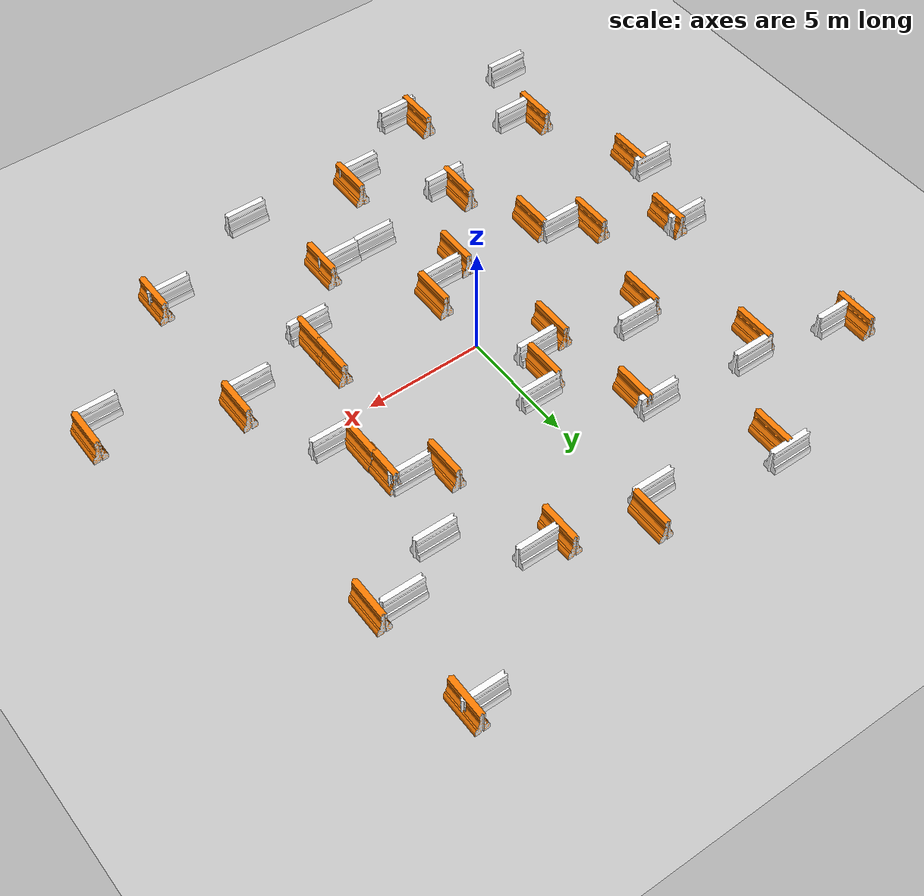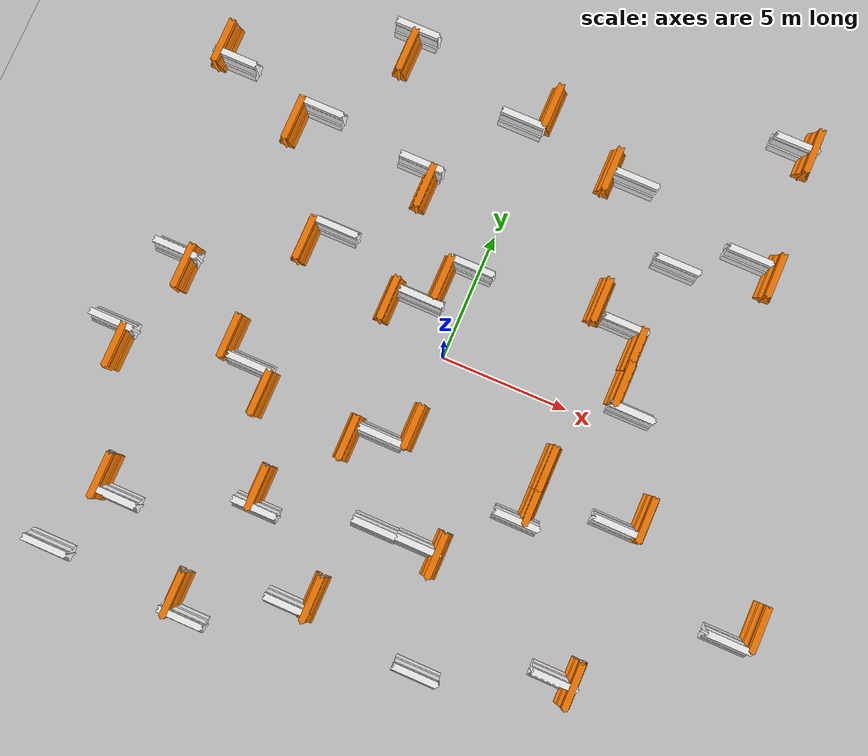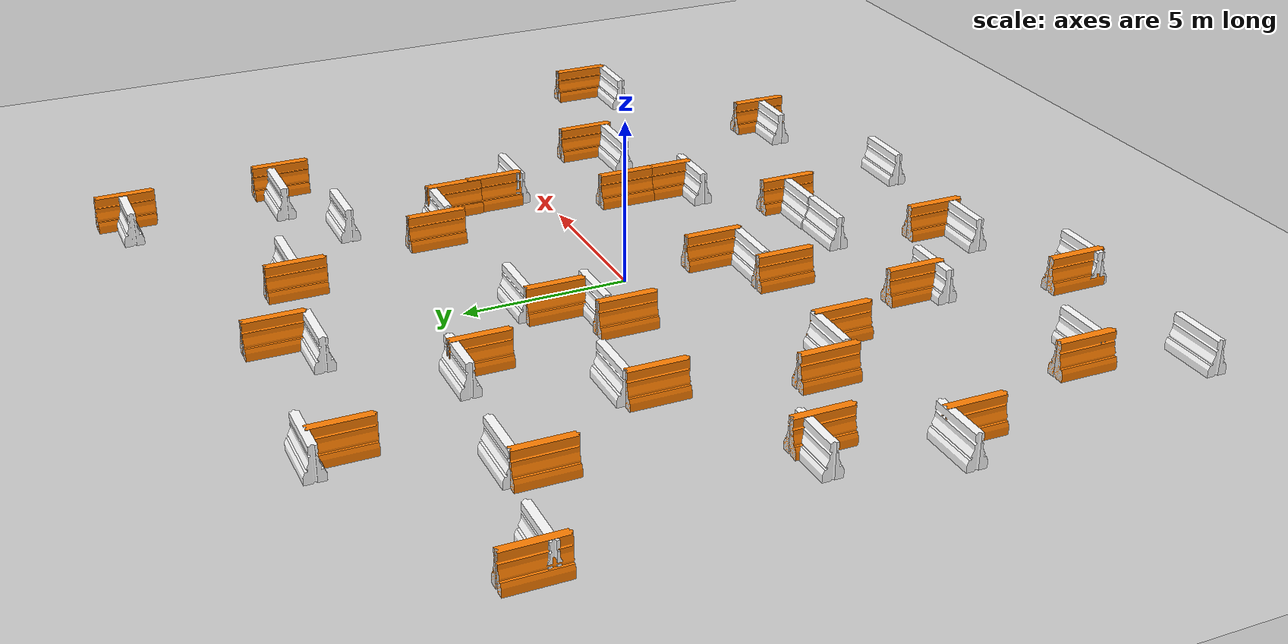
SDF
<sdf version="1.7">
 <world name="default">
  <light name="sun" type="directional">
   <pose>0 0 10 0 -0 0</pose>
   <diffuse>0.8 0.8 0.8 1</diffuse>
   <specular>0.2 0.2 0.2 1</specular>
   <attenuation>
    <range>1000</range>
    <constant>0.9</constant>
    <linear>0.01</linear>
    <quadratic>0.001</quadratic>
   </attenuation>
   <direction>-0.5 0.1 -0.9</direction>
   <spot><inner_angle>0</inner_angle><outer_angle>0</outer_angle><falloff>0</falloff></spot>
  </light>
  <model name="ground_plane">
   <static>1</static>
   <link name="link">
    <collision name="collision">
     <geometry><plane><normal>0 0 1</normal><size>100 100</size></plane></geometry>
     <surface>
      <contact><collide_bitmask>65535</collide_bitmask></contact>
      <friction><ode><mu>100</mu><mu2>50</mu2></ode></friction>
     </surface>
    </collision>
    <visual name="visual">
     <cast_shadows>0</cast_shadows>
     <geometry><plane><normal>0 0 1</normal><size>100 100</size></plane></geometry>
     <material>
      <script><uri>file://media/materials/scripts/gazebo.material</uri><name>Gazebo/Grey</name></script>
     </material>
    </visual>
   </link>
  </model>
  <gravity>0 0 -9.8</gravity>
  <magnetic_field>6e-06 2.3e-05 -4.2e-05</magnetic_field>
  <atmosphere type="adiabatic"/>
  <physics type="ode">
   <max_step_size>0.001</max_step_size>
   <real_time_factor>1</real_time_factor>
   <real_time_update_rate>1000</real_time_update_rate>
  </physics>
  <scene><ambient>0.4 0.4 0.4 1</ambient><background>0.7 0.7 0.7 1</background><shadows>1</shadows></scene>
  <spherical_coordinates>
   <surface_model>EARTH_WGS84</surface_model>
   <latitude_deg>0</latitude_deg>
   <longitude_deg>0</longitude_deg>
   <elevation>0</elevation>
   <heading_deg>0</heading_deg>
  </spherical_coordinates>
  <model name="drc_practice_orange_jersey_barrier_clone_0">
   <pose>-10.1874 -0.696687 0.001834 0 -0 0</pose>
   <frame name="drc_practice_organge_jersey_barrier::__model__" attached_to="drc_practice_organge_jersey_barrier::link">
    <pose relative_to="__model__">0 0 0 0 -0 0</pose>
   </frame>
   <static>1</static>
   <link name="drc_practice_organge_jersey_barrier::link">
    <visual name="visual">
     <geometry>
      <mesh><uri>model://drc_practice_orange_jersey_barrier/meshes/jersey_barrier.dae</uri></mesh>
     </geometry>
    </visual>
    <collision name="collision">
     <geometry>
      <mesh><uri>model://drc_practice_orange_jersey_barrier/meshes/jersey_barrier.dae</uri></mesh>
     </geometry>
    </collision>
    <pose relative_to="drc_practice_organge_jersey_barrier::__model__">0 0 0 0 -0 0</pose>
   </link>
  </model>
  <model name="drc_practice_orange_jersey_barrier_clone_1">
   <pose>-3.11986 5.63659 -0.000723 0 -0 0</pose>
   <frame name="drc_practice_organge_jersey_barrier::__model__" attached_to="drc_practice_organge_jersey_barrier::link">
    <pose relative_to="__model__">0 0 0 0 -0 0</pose>
   </frame>
   <static>1</static>
   <link name="drc_practice_organge_jersey_barrier::link">
    <visual name="visual">
     <geometry>
      <mesh><uri>model://drc_practice_orange_jersey_barrier/meshes/jersey_barrier.dae</uri></mesh>
     </geometry>
    </visual>
    <collision name="collision">
     <geometry>
      <mesh><uri>model://drc_practice_orange_jersey_barrier/meshes/jersey_barrier.dae</uri></mesh>
     </geometry>
    </collision>
    <pose relative_to="drc_practice_organge_jersey_barrier::__model__">0 0 0 0 -0 0</pose>
   </link>
  </model>
  <model name="drc_practice_orange_jersey_barrier_clone_2">
   <pose>-5.81841 10.2271 -0.003519 0 -0 0</pose>
   <frame name="drc_practice_organge_jersey_barrier::__model__" attached_to="drc_practice_organge_jersey_barrier::link">
    <pose relative_to="__model__">0 0 0 0 -0 0</pose>
   </frame>
   <static>1</static>
   <link name="drc_practice_organge_jersey_barrier::link">
    <visual name="visual">
     <geometry>
      <mesh><uri>model://drc_practice_orange_jersey_barrier/meshes/jersey_barrier.dae</uri></mesh>
     </geometry>
    </visual>
    <collision name="collision">
     <geometry>
      <mesh><uri>model://drc_practice_orange_jersey_barrier/meshes/jersey_barrier.dae</uri></mesh>
     </geometry>
    </collision>
    <pose relative_to="drc_practice_organge_jersey_barrier::__model__">0 0 0 0 -0 0</pose>
   </link>
  </model>
  <model name="drc_practice_orange_jersey_barrier_clone_3">
   <pose>6.46614 2.98525 0.002097 0 -0 0</pose>
   <frame name="drc_practice_organge_jersey_barrier::__model__" attached_to="drc_practice_organge_jersey_barrier::link">
    <pose relative_to="__model__">0 0 0 0 -0 0</pose>
   </frame>
   <static>1</static>
   <link name="drc_practice_organge_jersey_barrier::link">
    <visual name="visual">
     <geometry>
      <mesh><uri>model://drc_practice_orange_jersey_barrier/meshes/jersey_barrier.dae</uri></mesh>
     </geometry>
    </visual>
    <collision name="collision">
     <geometry>
      <mesh><uri>model://drc_practice_orange_jersey_barrier/meshes/jersey_barrier.dae</uri></mesh>
     </geometry>
    </collision>
    <pose relative_to="drc_practice_organge_jersey_barrier::__model__">0 0 0 0 -0 0</pose>
   </link>
  </model>
  <model name="drc_practice_orange_jersey_barrier_clone_4">
   <pose>6.49942 1.63685 0.004507 0 -0 0</pose>
   <frame name="drc_practice_organge_jersey_barrier::__model__" attached_to="drc_practice_organge_jersey_barrier::link">
    <pose relative_to="__model__">0 0 0 0 -0 0</pose>
   </frame>
   <static>1</static>
   <link name="drc_practice_organge_jersey_barrier::link">
    <visual name="visual">
     <geometry>
      <mesh><uri>model://drc_practice_orange_jersey_barrier/meshes/jersey_barrier.dae</uri></mesh>
     </geometry>
    </visual>
    <collision name="collision">
     <geometry>
      <mesh><uri>model://drc_practice_orange_jersey_barrier/meshes/jersey_barrier.dae</uri></mesh>
     </geometry>
    </collision>
    <pose relative_to="drc_practice_organge_jersey_barrier::__model__">0 0 0 0 -0 0</pose>
   </link>
  </model>
  <model name="drc_practice_orange_jersey_barrier_clone_5">
   <pose>-2.69496 1.18275 -0.003501 0 -0 0</pose>
   <frame name="drc_practice_organge_jersey_barrier::__model__" attached_to="drc_practice_organge_jersey_barrier::link">
    <pose relative_to="__model__">0 0 0 0 -0 0</pose>
   </frame>
   <static>1</static>
   <link name="drc_practice_organge_jersey_barrier::link">
    <visual name="visual">
     <geometry>
      <mesh><uri>model://drc_practice_orange_jersey_barrier/meshes/jersey_barrier.dae</uri></mesh>
     </geometry>
    </visual>
    <collision name="collision">
     <geometry>
      <mesh><uri>model://drc_practice_orange_jersey_barrier/meshes/jersey_barrier.dae</uri></mesh>
     </geometry>
    </collision>
    <pose relative_to="drc_practice_organge_jersey_barrier::__model__">0 0 0 0 -0 0</pose>
   </link>
  </model>
  <model name="drc_practice_orange_jersey_barrier_clone_6">
   <pose>-5.54481 -11.7487 -0.001958 0 -0 0</pose>
   <frame name="drc_practice_organge_jersey_barrier::__model__" attached_to="drc_practice_organge_jersey_barrier::link">
    <pose relative_to="__model__">0 0 0 0 -0 0</pose>
   </frame>
   <static>1</static>
   <link name="drc_practice_organge_jersey_barrier::link">
    <visual name="visual">
     <geometry>
      <mesh><uri>model://drc_practice_orange_jersey_barrier/meshes/jersey_barrier.dae</uri></mesh>
     </geometry>
    </visual>
    <collision name="collision">
     <geometry>
      <mesh><uri>model://drc_practice_orange_jersey_barrier/meshes/jersey_barrier.dae</uri></mesh>
     </geometry>
    </collision>
    <pose relative_to="drc_practice_organge_jersey_barrier::__model__">0 0 0 0 -0 0</pose>
   </link>
  </model>
  <model name="drc_practice_orange_jersey_barrier_clone_7">
   <pose>-1.14462 2.68768 -0.002019 0 -0 0</pose>
   <frame name="drc_practice_organge_jersey_barrier::__model__" attached_to="drc_practice_organge_jersey_barrier::link">
    <pose relative_to="__model__">0 0 0 0 -0 0</pose>
   </frame>
   <static>1</static>
   <link name="drc_practice_organge_jersey_barrier::link">
    <visual name="visual">
     <geometry>
      <mesh><uri>model://drc_practice_orange_jersey_barrier/meshes/jersey_barrier.dae</uri></mesh>
     </geometry>
    </visual>
    <collision name="collision">
     <geometry>
      <mesh><uri>model://drc_practice_orange_jersey_barrier/meshes/jersey_barrier.dae</uri></mesh>
     </geometry>
    </collision>
    <pose relative_to="drc_practice_organge_jersey_barrier::__model__">0 0 0 0 -0 0</pose>
   </link>
  </model>
  <model name="drc_practice_orange_jersey_barrier_clone_8">
   <pose>8.89615 -9.08356 0.003832 0 -0 0</pose>
   <frame name="drc_practice_organge_jersey_barrier::__model__" attached_to="drc_practice_organge_jersey_barrier::link">
    <pose relative_to="__model__">0 0 0 0 -0 0</pose>
   </frame>
   <static>1</static>
   <link name="drc_practice_organge_jersey_barrier::link">
    <visual name="visual">
     <geometry>
      <mesh><uri>model://drc_practice_orange_jersey_barrier/meshes/jersey_barrier.dae</uri></mesh>
     </geometry>
    </visual>
    <collision name="collision">
     <geometry>
      <mesh><uri>model://drc_practice_orange_jersey_barrier/meshes/jersey_barrier.dae</uri></mesh>
     </geometry>
    </collision>
    <pose relative_to="drc_practice_organge_jersey_barrier::__model__">0 0 0 0 -0 0</pose>
   </link>
  </model>
  <model name="drc_practice_orange_jersey_barrier_clone_9">
   <pose>14.2787 -4.64012 -0.004517 0 -0 0</pose>
   <frame name="drc_practice_organge_jersey_barrier::__model__" attached_to="drc_practice_organge_jersey_barrier::link">
    <pose relative_to="__model__">0 0 0 0 -0 0</pose>
   </frame>
   <static>1</static>
   <link name="drc_practice_organge_jersey_barrier::link">
    <visual name="visual">
     <geometry>
      <mesh><uri>model://drc_practice_orange_jersey_barrier/meshes/jersey_barrier.dae</uri></mesh>
     </geometry>
    </visual>
    <collision name="collision">
     <geometry>
      <mesh><uri>model://drc_practice_orange_jersey_barrier/meshes/jersey_barrier.dae</uri></mesh>
     </geometry>
    </collision>
    <pose relative_to="drc_practice_organge_jersey_barrier::__model__">0 0 0 0 -0 0</pose>
   </link>
  </model>
  <model name="drc_practice_orange_jersey_barrier_clone_10">
   <pose>-11.2756 -4.38639 -0.003681 0 -0 0</pose>
   <frame name="drc_practice_organge_jersey_barrier::__model__" attached_to="drc_practice_organge_jersey_barrier::link">
    <pose relative_to="__model__">0 0 0 0 -0 0</pose>
   </frame>
   <static>1</static>
   <link name="drc_practice_organge_jersey_barrier::link">
    <visual name="visual">
     <geometry>
      <mesh><uri>model://drc_practice_orange_jersey_barrier/meshes/jersey_barrier.dae</uri></mesh>
     </geometry>
    </visual>
    <collision name="collision">
     <geometry>
      <mesh><uri>model://drc_practice_orange_jersey_barrier/meshes/jersey_barrier.dae</uri></mesh>
     </geometry>
    </collision>
    <pose relative_to="drc_practice_organge_jersey_barrier::__model__">0 0 0 0 -0 0</pose>
   </link>
  </model>
  <model name="drc_practice_orange_jersey_barrier_clone_11">
   <pose>3.08854 8.96603 0.001387 0 -0 0</pose>
   <frame name="drc_practice_organge_jersey_barrier::__model__" attached_to="drc_practice_organge_jersey_barrier::link">
    <pose relative_to="__model__">0 0 0 0 -0 0</pose>
   </frame>
   <static>1</static>
   <link name="drc_practice_organge_jersey_barrier::link">
    <visual name="visual">
     <geometry>
      <mesh><uri>model://drc_practice_orange_jersey_barrier/meshes/jersey_barrier.dae</uri></mesh>
     </geometry>
    </visual>
    <collision name="collision">
     <geometry>
      <mesh><uri>model://drc_practice_orange_jersey_barrier/meshes/jersey_barrier.dae</uri></mesh>
     </geometry>
    </collision>
    <pose relative_to="drc_practice_organge_jersey_barrier::__model__">0 0 0 0 -0 0</pose>
   </link>
  </model>
  <model name="drc_practice_orange_jersey_barrier_clone_12">
   <pose>-0.88483 -9.94949 0.003217 0 -0 0</pose>
   <frame name="drc_practice_organge_jersey_barrier::__model__" attached_to="drc_practice_organge_jersey_barrier::link">
    <pose relative_to="__model__">0 0 0 0 -0 0</pose>
   </frame>
   <static>1</static>
   <link name="drc_practice_organge_jersey_barrier::link">
    <visual name="visual">
     <geometry>
      <mesh><uri>model://drc_practice_orange_jersey_barrier/meshes/jersey_barrier.dae</uri></mesh>
     </geometry>
    </visual>
    <collision name="collision">
     <geometry>
      <mesh><uri>model://drc_practice_orange_jersey_barrier/meshes/jersey_barrier.dae</uri></mesh>
     </geometry>
    </collision>
    <pose relative_to="drc_practice_organge_jersey_barrier::__model__">0 0 0 0 -0 0</pose>
   </link>
  </model>
  <model name="drc_practice_orange_jersey_barrier_clone_13">
   <pose>10.1871 7.56766 0.004213 0 -0 0</pose>
   <frame name="drc_practice_organge_jersey_barrier::__model__" attached_to="drc_practice_organge_jersey_barrier::link">
    <pose relative_to="__model__">0 0 0 0 -0 0</pose>
   </frame>
   <static>1</static>
   <link name="drc_practice_organge_jersey_barrier::link">
    <visual name="visual">
     <geometry>
      <mesh><uri>model://drc_practice_orange_jersey_barrier/meshes/jersey_barrier.dae</uri></mesh>
     </geometry>
    </visual>
    <collision name="collision">
     <geometry>
      <mesh><uri>model://drc_practice_orange_jersey_barrier/meshes/jersey_barrier.dae</uri></mesh>
     </geometry>
    </collision>
    <pose relative_to="drc_practice_organge_jersey_barrier::__model__">0 0 0 0 -0 0</pose>
   </link>
  </model>
  <model name="drc_practice_orange_jersey_barrier_clone_14">
   <pose>4.59855 4.20986 0.000452 0 -0 0</pose>
   <frame name="drc_practice_organge_jersey_barrier::__model__" attached_to="drc_practice_organge_jersey_barrier::link">
    <pose relative_to="__model__">0 0 0 0 -0 0</pose>
   </frame>
   <static>1</static>
   <link name="drc_practice_organge_jersey_barrier::link">
    <visual name="visual">
     <geometry>
      <mesh><uri>model://drc_practice_orange_jersey_barrier/meshes/jersey_barrier.dae</uri></mesh>
     </geometry>
    </visual>
    <collision name="collision">
     <geometry>
      <mesh><uri>model://drc_practice_orange_jersey_barrier/meshes/jersey_barrier.dae</uri></mesh>
     </geometry>
    </collision>
    <pose relative_to="drc_practice_organge_jersey_barrier::__model__">0 0 0 0 -0 0</pose>
   </link>
  </model>
  <model name="drc_practice_orange_jersey_barrier_clone_15">
   <pose>-7.53165 -2.40747 -0.001657 0 -0 0</pose>
   <frame name="drc_practice_organge_jersey_barrier::__model__" attached_to="drc_practice_organge_jersey_barrier::link">
    <pose relative_to="__model__">0 0 0 0 -0 0</pose>
   </frame>
   <static>1</static>
   <link name="drc_practice_organge_jersey_barrier::link">
    <visual name="visual">
     <geometry>
      <mesh><uri>model://drc_practice_orange_jersey_barrier/meshes/jersey_barrier.dae</uri></mesh>
     </geometry>
    </visual>
    <collision name="collision">
     <geometry>
      <mesh><uri>model://drc_practice_orange_jersey_barrier/meshes/jersey_barrier.dae</uri></mesh>
     </geometry>
    </collision>
    <pose relative_to="drc_practice_organge_jersey_barrier::__model__">0 0 0 0 -0 0</pose>
   </link>
  </model>
  <model name="drc_practice_orange_jersey_barrier_clone_16">
   <pose>-12.3925 7.80115 -0.000557 0 -0 0</pose>
   <frame name="drc_practice_organge_jersey_barrier::__model__" attached_to="drc_practice_organge_jersey_barrier::link">
    <pose relative_to="__model__">0 0 0 0 -0 0</pose>
   </frame>
   <static>1</static>
   <link name="drc_practice_organge_jersey_barrier::link">
    <visual name="visual">
     <geometry>
      <mesh><uri>model://drc_practice_orange_jersey_barrier/meshes/jersey_barrier.dae</uri></mesh>
     </geometry>
    </visual>
    <collision name="collision">
     <geometry>
      <mesh><uri>model://drc_practice_orange_jersey_barrier/meshes/jersey_barrier.dae</uri></mesh>
     </geometry>
    </collision>
    <pose relative_to="drc_practice_organge_jersey_barrier::__model__">0 0 0 0 -0 0</pose>
   </link>
  </model>
  <model name="drc_practice_orange_jersey_barrier_clone_17">
   <pose>-9.73155 -8.91718 0.004042 0 -0 0</pose>
   <frame name="drc_practice_organge_jersey_barrier::__model__" attached_to="drc_practice_organge_jersey_barrier::link">
    <pose relative_to="__model__">0 0 0 0 -0 0</pose>
   </frame>
   <static>1</static>
   <link name="drc_practice_organge_jersey_barrier::link">
    <visual name="visual">
     <geometry>
      <mesh><uri>model://drc_practice_orange_jersey_barrier/meshes/jersey_barrier.dae</uri></mesh>
     </geometry>
    </visual>
    <collision name="collision">
     <geometry>
      <mesh><uri>model://drc_practice_orange_jersey_barrier/meshes/jersey_barrier.dae</uri></mesh>
     </geometry>
    </collision>
    <pose relative_to="drc_practice_organge_jersey_barrier::__model__">0 0 0 0 -0 0</pose>
   </link>
  </model>
  <model name="drc_practice_orange_jersey_barrier_clone_18">
   <pose>-2.01993 -4.12653 -0.003602 0 -0 0</pose>
   <frame name="drc_practice_organge_jersey_barrier::__model__" attached_to="drc_practice_organge_jersey_barrier::link">
    <pose relative_to="__model__">0 0 0 0 -0 0</pose>
   </frame>
   <static>1</static>
   <link name="drc_practice_organge_jersey_barrier::link">
    <visual name="visual">
     <geometry>
      <mesh><uri>model://drc_practice_orange_jersey_barrier/meshes/jersey_barrier.dae</uri></mesh>
     </geometry>
    </visual>
    <collision name="collision">
     <geometry>
      <mesh><uri>model://drc_practice_orange_jersey_barrier/meshes/jersey_barrier.dae</uri></mesh>
     </geometry>
    </collision>
    <pose relative_to="drc_practice_organge_jersey_barrier::__model__">0 0 0 0 -0 0</pose>
   </link>
  </model>
  <model name="drc_practice_orange_jersey_barrier_clone_19">
   <pose>5.11509 -3.66555 -0.001896 0 -0 0</pose>
   <frame name="drc_practice_organge_jersey_barrier::__model__" attached_to="drc_practice_organge_jersey_barrier::link">
    <pose relative_to="__model__">0 0 0 0 -0 0</pose>
   </frame>
   <static>1</static>
   <link name="drc_practice_organge_jersey_barrier::link">
    <visual name="visual">
     <geometry>
      <mesh><uri>model://drc_practice_orange_jersey_barrier/meshes/jersey_barrier.dae</uri></mesh>
     </geometry>
    </visual>
    <collision name="collision">
     <geometry>
      <mesh><uri>model://drc_practice_orange_jersey_barrier/meshes/jersey_barrier.dae</uri></mesh>
     </geometry>
    </collision>
    <pose relative_to="drc_practice_organge_jersey_barrier::__model__">0 0 0 0 -0 0</pose>
   </link>
  </model>
  <model name="drc_practice_orange_jersey_barrier_clone_20">
   <pose>-6.46504 2.04607 0.001226 0 -0 0</pose>
   <frame name="drc_practice_organge_jersey_barrier::__model__" attached_to="drc_practice_organge_jersey_barrier::link">
    <pose relative_to="__model__">0 0 0 0 -0 0</pose>
   </frame>
   <static>1</static>
   <link name="drc_practice_organge_jersey_barrier::link">
    <visual name="visual">
     <geometry>
      <mesh><uri>model://drc_practice_orange_jersey_barrier/meshes/jersey_barrier.dae</uri></mesh>
     </geometry>
    </visual>
    <collision name="collision">
     <geometry>
      <mesh><uri>model://drc_practice_orange_jersey_barrier/meshes/jersey_barrier.dae</uri></mesh>
     </geometry>
    </collision>
    <pose relative_to="drc_practice_organge_jersey_barrier::__model__">0 0 0 0 -0 0</pose>
   </link>
  </model>
  <model name="drc_practice_orange_jersey_barrier_clone_21">
   <pose>0.098935 10.3603 0.00056 0 -0 0</pose>
   <frame name="drc_practice_organge_jersey_barrier::__model__" attached_to="drc_practice_organge_jersey_barrier::link">
    <pose relative_to="__model__">0 0 0 0 -0 0</pose>
   </frame>
   <static>1</static>
   <link name="drc_practice_organge_jersey_barrier::link">
    <visual name="visual">
     <geometry>
      <mesh><uri>model://drc_practice_orange_jersey_barrier/meshes/jersey_barrier.dae</uri></mesh>
     </geometry>
    </visual>
    <collision name="collision">
     <geometry>
      <mesh><uri>model://drc_practice_orange_jersey_barrier/meshes/jersey_barrier.dae</uri></mesh>
     </geometry>
    </collision>
    <pose relative_to="drc_practice_organge_jersey_barrier::__model__">0 0 0 0 -0 0</pose>
   </link>
  </model>
  <model name="drc_practice_orange_jersey_barrier_clone_22">
   <pose>5.11565 -2.31376 -0.001272 0 -0 0</pose>
   <frame name="drc_practice_organge_jersey_barrier::__model__" attached_to="drc_practice_organge_jersey_barrier::link">
    <pose relative_to="__model__">0 0 0 0 -0 0</pose>
   </frame>
   <static>1</static>
   <link name="drc_practice_organge_jersey_barrier::link">
    <visual name="visual">
     <geometry>
      <mesh><uri>model://drc_practice_orange_jersey_barrier/meshes/jersey_barrier.dae</uri></mesh>
     </geometry>
    </visual>
    <collision name="collision">
     <geometry>
      <mesh><uri>model://drc_practice_orange_jersey_barrier/meshes/jersey_barrier.dae</uri></mesh>
     </geometry>
    </collision>
    <pose relative_to="drc_practice_organge_jersey_barrier::__model__">0 0 0 0 -0 0</pose>
   </link>
  </model>
  <model name="drc_practice_orange_jersey_barrier_clone_23">
   <pose>0.008607 -2.8347 0.000602 0 -0 0</pose>
   <frame name="drc_practice_organge_jersey_barrier::__model__" attached_to="drc_practice_organge_jersey_barrier::link">
    <pose relative_to="__model__">0 0 0 0 -0 0</pose>
   </frame>
   <static>1</static>
   <link name="drc_practice_organge_jersey_barrier::link">
    <visual name="visual">
     <geometry>
      <mesh><uri>model://drc_practice_orange_jersey_barrier/meshes/jersey_barrier.dae</uri></mesh>
     </geometry>
    </visual>
    <collision name="collision">
     <geometry>
      <mesh><uri>model://drc_practice_orange_jersey_barrier/meshes/jersey_barrier.dae</uri></mesh>
     </geometry>
    </collision>
    <pose relative_to="drc_practice_organge_jersey_barrier::__model__">0 0 0 0 -0 0</pose>
   </link>
  </model>
  <model name="drc_practice_orange_jersey_barrier_clone_24">
   <pose>-8.71999 6.08048 -0.002424 0 -0 0</pose>
   <frame name="drc_practice_organge_jersey_barrier::__model__" attached_to="drc_practice_organge_jersey_barrier::link">
    <pose relative_to="__model__">0 0 0 0 -0 0</pose>
   </frame>
   <static>1</static>
   <link name="drc_practice_organge_jersey_barrier::link">
    <visual name="visual">
     <geometry>
      <mesh><uri>model://drc_practice_orange_jersey_barrier/meshes/jersey_barrier.dae</uri></mesh>
     </geometry>
    </visual>
    <collision name="collision">
     <geometry>
      <mesh><uri>model://drc_practice_orange_jersey_barrier/meshes/jersey_barrier.dae</uri></mesh>
     </geometry>
    </collision>
    <pose relative_to="drc_practice_organge_jersey_barrier::__model__">0 0 0 0 -0 0</pose>
   </link>
  </model>
  <model name="drc_practice_orange_jersey_barrier_clone_25">
   <pose>-5.64073 -3.89735 0.003778 0 -0 0</pose>
   <frame name="drc_practice_organge_jersey_barrier::__model__" attached_to="drc_practice_organge_jersey_barrier::link">
    <pose relative_to="__model__">0 0 0 0 -0 0</pose>
   </frame>
   <static>1</static>
   <link name="drc_practice_organge_jersey_barrier::link">
    <visual name="visual">
     <geometry>
      <mesh><uri>model://drc_practice_orange_jersey_barrier/meshes/jersey_barrier.dae</uri></mesh>
     </geometry>
    </visual>
    <collision name="collision">
     <geometry>
      <mesh><uri>model://drc_practice_orange_jersey_barrier/meshes/jersey_barrier.dae</uri></mesh>
     </geometry>
    </collision>
    <pose relative_to="drc_practice_organge_jersey_barrier::__model__">0 0 0 0 -0 0</pose>
   </link>
  </model>
  <model name="drc_practice_orange_jersey_barrier_clone_26">
   <pose>9.80168 12.5535 0.003666 0 -0 0</pose>
   <frame name="drc_practice_organge_jersey_barrier::__model__" attached_to="drc_practice_organge_jersey_barrier::link">
    <pose relative_to="__model__">0 0 0 0 -0 0</pose>
   </frame>
   <static>1</static>
   <link name="drc_practice_organge_jersey_barrier::link">
    <visual name="visual">
     <geometry>
      <mesh><uri>model://drc_practice_orange_jersey_barrier/meshes/jersey_barrier.dae</uri></mesh>
     </geometry>
    </visual>
    <collision name="collision">
     <geometry>
      <mesh><uri>model://drc_practice_orange_jersey_barrier/meshes/jersey_barrier.dae</uri></mesh>
     </geometry>
    </collision>
    <pose relative_to="drc_practice_organge_jersey_barrier::__model__">0 0 0 0 -0 0</pose>
   </link>
  </model>
  <model name="drc_practice_orange_jersey_barrier_clone_27">
   <pose>9.12513 -2.62549 0.002261 0 -0 0</pose>
   <frame name="drc_practice_organge_jersey_barrier::__model__" attached_to="drc_practice_organge_jersey_barrier::link">
    <pose relative_to="__model__">0 0 0 0 -0 0</pose>
   </frame>
   <static>1</static>
   <link name="drc_practice_organge_jersey_barrier::link">
    <visual name="visual">
     <geometry>
      <mesh><uri>model://drc_practice_orange_jersey_barrier/meshes/jersey_barrier.dae</uri></mesh>
     </geometry>
    </visual>
    <collision name="collision">
     <geometry>
      <mesh><uri>model://drc_practice_orange_jersey_barrier/meshes/jersey_barrier.dae</uri></mesh>
     </geometry>
    </collision>
    <pose relative_to="drc_practice_organge_jersey_barrier::__model__">0 0 0 0 -0 0</pose>
   </link>
  </model>
  <model name="drc_practice_orange_jersey_barrier_clone_28">
   <pose>-4.31501 -7.08829 0.002354 0 -0 0</pose>
   <frame name="drc_practice_organge_jersey_barrier::__model__" attached_to="drc_practice_organge_jersey_barrier::link">
    <pose relative_to="__model__">0 0 0 0 -0 0</pose>
   </frame>
   <static>1</static>
   <link name="drc_practice_organge_jersey_barrier::link">
    <visual name="visual">
     <geometry>
      <mesh><uri>model://drc_practice_orange_jersey_barrier/meshes/jersey_barrier.dae</uri></mesh>
     </geometry>
    </visual>
    <collision name="collision">
     <geometry>
      <mesh><uri>model://drc_practice_orange_jersey_barrier/meshes/jersey_barrier.dae</uri></mesh>
     </geometry>
    </collision>
    <pose relative_to="drc_practice_organge_jersey_barrier::__model__">0 0 0 0 -0 0</pose>
   </link>
  </model>
  <model name="drc_practice_orange_jersey_barrier_clone_29">
   <pose>2.62674 -6.77495 0.001987 0 -0 0</pose>
   <frame name="drc_practice_organge_jersey_barrier::__model__" attached_to="drc_practice_organge_jersey_barrier::link">
    <pose relative_to="__model__">0 0 0 0 -0 0</pose>
   </frame>
   <static>1</static>
   <link name="drc_practice_organge_jersey_barrier::link">
    <visual name="visual">
     <geometry>
      <mesh><uri>model://drc_practice_orange_jersey_barrier/meshes/jersey_barrier.dae</uri></mesh>
     </geometry>
    </visual>
    <collision name="collision">
     <geometry>
      <mesh><uri>model://drc_practice_orange_jersey_barrier/meshes/jersey_barrier.dae</uri></mesh>
     </geometry>
    </collision>
    <pose relative_to="drc_practice_organge_jersey_barrier::__model__">0 0 0 0 -0 0</pose>
   </link>
  </model>
  <model name="drc_practice_white_jersey_barrier_clone_0">
   <pose>-4.12659 -7.81033 -0.002135 0 -0 0</pose>
   <frame name="drc_practice_white_jersey_barrier::__model__" attached_to="drc_practice_white_jersey_barrier::link">
    <pose relative_to="__model__">0 0 0 0 -0 1.57</pose>
   </frame>
   <static>1</static>
   <link name="drc_practice_white_jersey_barrier::link">
    <visual name="visual">
     <geometry>
      <mesh><uri>model://drc_practice_white_jersey_barrier/meshes/jersey_barrier.dae</uri></mesh>
     </geometry>
    </visual>
    <collision name="collision">
     <geometry>
      <mesh><uri>model://drc_practice_white_jersey_barrier/meshes/jersey_barrier.dae</uri></mesh>
     </geometry>
    </collision>
    <pose relative_to="drc_practice_white_jersey_barrier::__model__">0 0 0 0 -0 0</pose>
   </link>
  </model>
  <model name="drc_practice_white_jersey_barrier_clone_1">
   <pose>1.87594 -6.73224 0.001155 0 -0 0</pose>
   <frame name="drc_practice_white_jersey_barrier::__model__" attached_to="drc_practice_white_jersey_barrier::link">
    <pose relative_to="__model__">0 0 0 0 -0 1.57</pose>
   </frame>
   <static>1</static>
   <link name="drc_practice_white_jersey_barrier::link">
    <visual name="visual">
     <geometry>
      <mesh><uri>model://drc_practice_white_jersey_barrier/meshes/jersey_barrier.dae</uri></mesh>
     </geometry>
    </visual>
    <collision name="collision">
     <geometry>
      <mesh><uri>model://drc_practice_white_jersey_barrier/meshes/jersey_barrier.dae</uri></mesh>
     </geometry>
    </collision>
    <pose relative_to="drc_practice_white_jersey_barrier::__model__">0 0 0 0 -0 0</pose>
   </link>
  </model>
  <model name="drc_practice_white_jersey_barrier_clone_2">
   <pose>4.79095 -4.49419 -0.003908 0 -0 0</pose>
   <frame name="drc_practice_white_jersey_barrier::__model__" attached_to="drc_practice_white_jersey_barrier::link">
    <pose relative_to="__model__">0 0 0 0 -0 1.57</pose>
   </frame>
   <static>1</static>
   <link name="drc_practice_white_jersey_barrier::link">
    <visual name="visual">
     <geometry>
      <mesh><uri>model://drc_practice_white_jersey_barrier/meshes/jersey_barrier.dae</uri></mesh>
     </geometry>
    </visual>
    <collision name="collision">
     <geometry>
      <mesh><uri>model://drc_practice_white_jersey_barrier/meshes/jersey_barrier.dae</uri></mesh>
     </geometry>
    </collision>
    <pose relative_to="drc_practice_white_jersey_barrier::__model__">0 0 0 0 -0 0</pose>
   </link>
  </model>
  <model name="drc_practice_white_jersey_barrier_clone_3">
   <pose>-0.948582 -3.62449 0.001753 0 -0 0</pose>
   <frame name="drc_practice_white_jersey_barrier::__model__" attached_to="drc_practice_white_jersey_barrier::link">
    <pose relative_to="__model__">0 0 0 0 -0 1.57</pose>
   </frame>
   <static>1</static>
   <link name="drc_practice_white_jersey_barrier::link">
    <visual name="visual">
     <geometry>
      <mesh><uri>model://drc_practice_white_jersey_barrier/meshes/jersey_barrier.dae</uri></mesh>
     </geometry>
    </visual>
    <collision name="collision">
     <geometry>
      <mesh><uri>model://drc_practice_white_jersey_barrier/meshes/jersey_barrier.dae</uri></mesh>
     </geometry>
    </collision>
    <pose relative_to="drc_practice_white_jersey_barrier::__model__">0 0 0 0 -0 0</pose>
   </link>
  </model>
  <model name="drc_practice_white_jersey_barrier_clone_4">
   <pose>6.70842 6.52651 -0.003222 0 -0 0</pose>
   <frame name="drc_practice_white_jersey_barrier::__model__" attached_to="drc_practice_white_jersey_barrier::link">
    <pose relative_to="__model__">0 0 0 0 -0 1.57</pose>
   </frame>
   <static>1</static>
   <link name="drc_practice_white_jersey_barrier::link">
    <visual name="visual">
     <geometry>
      <mesh><uri>model://drc_practice_white_jersey_barrier/meshes/jersey_barrier.dae</uri></mesh>
     </geometry>
    </visual>
    <collision name="collision">
     <geometry>
      <mesh><uri>model://drc_practice_white_jersey_barrier/meshes/jersey_barrier.dae</uri></mesh>
     </geometry>
    </collision>
    <pose relative_to="drc_practice_white_jersey_barrier::__model__">0 0 0 0 -0 0</pose>
   </link>
  </model>
  <model name="drc_practice_white_jersey_barrier_clone_5">
   <pose>-10.5222 -12.0043 0.000145 0 -0 0</pose>
   <frame name="drc_practice_white_jersey_barrier::__model__" attached_to="drc_practice_white_jersey_barrier::link">
    <pose relative_to="__model__">0 0 0 0 -0 1.57</pose>
   </frame>
   <static>1</static>
   <link name="drc_practice_white_jersey_barrier::link">
    <visual name="visual">
     <geometry>
      <mesh><uri>model://drc_practice_white_jersey_barrier/meshes/jersey_barrier.dae</uri></mesh>
     </geometry>
    </visual>
    <collision name="collision">
     <geometry>
      <mesh><uri>model://drc_practice_white_jersey_barrier/meshes/jersey_barrier.dae</uri></mesh>
     </geometry>
    </collision>
    <pose relative_to="drc_practice_white_jersey_barrier::__model__">0 0 0 0 -0 0</pose>
   </link>
  </model>
  <model name="drc_practice_white_jersey_barrier_clone_6">
   <pose>3.57334 -10.9431 -0.001381 0 -0 0</pose>
   <frame name="drc_practice_white_jersey_barrier::__model__" attached_to="drc_practice_white_jersey_barrier::link">
    <pose relative_to="__model__">0 0 0 0 -0 1.57</pose>
   </frame>
   <static>1</static>
   <link name="drc_practice_white_jersey_barrier::link">
    <visual name="visual">
     <geometry>
      <mesh><uri>model://drc_practice_white_jersey_barrier/meshes/jersey_barrier.dae</uri></mesh>
     </geometry>
    </visual>
    <collision name="collision">
     <geometry>
      <mesh><uri>model://drc_practice_white_jersey_barrier/meshes/jersey_barrier.dae</uri></mesh>
     </geometry>
    </collision>
    <pose relative_to="drc_practice_white_jersey_barrier::__model__">0 0 0 0 -0 0</pose>
   </link>
  </model>
  <model name="drc_practice_white_jersey_barrier_clone_7">
   <pose>-8.95841 -9.42745 0.004624 0 -0 0</pose>
   <frame name="drc_practice_white_jersey_barrier::__model__" attached_to="drc_practice_white_jersey_barrier::link">
    <pose relative_to="__model__">0 0 0 0 -0 1.57</pose>
   </frame>
   <static>1</static>
   <link name="drc_practice_white_jersey_barrier::link">
    <visual name="visual">
     <geometry>
      <mesh><uri>model://drc_practice_white_jersey_barrier/meshes/jersey_barrier.dae</uri></mesh>
     </geometry>
    </visual>
    <collision name="collision">
     <geometry>
      <mesh><uri>model://drc_practice_white_jersey_barrier/meshes/jersey_barrier.dae</uri></mesh>
     </geometry>
    </collision>
    <pose relative_to="drc_practice_white_jersey_barrier::__model__">0 0 0 0 -0 0</pose>
   </link>
  </model>
  <model name="drc_practice_white_jersey_barrier_clone_8">
   <pose>4.06928 8.95253 0.001152 0 -0 0</pose>
   <frame name="drc_practice_white_jersey_barrier::__model__" attached_to="drc_practice_white_jersey_barrier::link">
    <pose relative_to="__model__">0 0 0 0 -0 1.57</pose>
   </frame>
   <static>1</static>
   <link name="drc_practice_white_jersey_barrier::link">
    <visual name="visual">
     <geometry>
      <mesh><uri>model://drc_practice_white_jersey_barrier/meshes/jersey_barrier.dae</uri></mesh>
     </geometry>
    </visual>
    <collision name="collision">
     <geometry>
      <mesh><uri>model://drc_practice_white_jersey_barrier/meshes/jersey_barrier.dae</uri></mesh>
     </geometry>
    </collision>
    <pose relative_to="drc_practice_white_jersey_barrier::__model__">0 0 0 0 -0 0</pose>
   </link>
  </model>
  <model name="drc_practice_white_jersey_barrier_clone_9">
   <pose>-5.78762 11.1295 -0.003132 0 -0 0</pose>
   <frame name="drc_practice_white_jersey_barrier::__model__" attached_to="drc_practice_white_jersey_barrier::link">
    <pose relative_to="__model__">0 0 0 0 -0 1.57</pose>
   </frame>
   <static>1</static>
   <link name="drc_practice_white_jersey_barrier::link">
    <visual name="visual">
     <geometry>
      <mesh><uri>model://drc_practice_white_jersey_barrier/meshes/jersey_barrier.dae</uri></mesh>
     </geometry>
    </visual>
    <collision name="collision">
     <geometry>
      <mesh><uri>model://drc_practice_white_jersey_barrier/meshes/jersey_barrier.dae</uri></mesh>
     </geometry>
    </collision>
    <pose relative_to="drc_practice_white_jersey_barrier::__model__">0 0 0 0 -0 0</pose>
   </link>
  </model>
  <model name="drc_practice_white_jersey_barrier_clone_10">
   <pose>-5.56384 2.84585 -0.003855 0 -0 0</pose>
   <frame name="drc_practice_white_jersey_barrier::__model__" attached_to="drc_practice_white_jersey_barrier::link">
    <pose relative_to="__model__">0 0 0 0 -0 1.57</pose>
   </frame>
   <static>1</static>
   <link name="drc_practice_white_jersey_barrier::link">
    <visual name="visual">
     <geometry>
      <mesh><uri>model://drc_practice_white_jersey_barrier/meshes/jersey_barrier.dae</uri></mesh>
     </geometry>
    </visual>
    <collision name="collision">
     <geometry>
      <mesh><uri>model://drc_practice_white_jersey_barrier/meshes/jersey_barrier.dae</uri></mesh>
     </geometry>
    </collision>
    <pose relative_to="drc_practice_white_jersey_barrier::__model__">0 0 0 0 -0 0</pose>
   </link>
  </model>
  <model name="drc_practice_white_jersey_barrier_clone_11">
   <pose>-0.300061 3.47447 -0.002019 0 -0 0</pose>
   <frame name="drc_practice_white_jersey_barrier::__model__" attached_to="drc_practice_white_jersey_barrier::link">
    <pose relative_to="__model__">0 0 0 0 -0 1.57</pose>
   </frame>
   <static>1</static>
   <link name="drc_practice_white_jersey_barrier::link">
    <visual name="visual">
     <geometry>
      <mesh><uri>model://drc_practice_white_jersey_barrier/meshes/jersey_barrier.dae</uri></mesh>
     </geometry>
    </visual>
    <collision name="collision">
     <geometry>
      <mesh><uri>model://drc_practice_white_jersey_barrier/meshes/jersey_barrier.dae</uri></mesh>
     </geometry>
    </collision>
    <pose relative_to="drc_practice_white_jersey_barrier::__model__">0 0 0 0 -0 0</pose>
   </link>
  </model>
  <model name="drc_practice_white_jersey_barrier_clone_12">
   <pose>-3.60812 6.37829 0.000752 0 -0 0</pose>
   <frame name="drc_practice_white_jersey_barrier::__model__" attached_to="drc_practice_white_jersey_barrier::link">
    <pose relative_to="__model__">0 0 0 0 -0 1.57</pose>
   </frame>
   <static>1</static>
   <link name="drc_practice_white_jersey_barrier::link">
    <visual name="visual">
     <geometry>
      <mesh><uri>model://drc_practice_white_jersey_barrier/meshes/jersey_barrier.dae</uri></mesh>
     </geometry>
    </visual>
    <collision name="collision">
     <geometry>
      <mesh><uri>model://drc_practice_white_jersey_barrier/meshes/jersey_barrier.dae</uri></mesh>
     </geometry>
    </collision>
    <pose relative_to="drc_practice_white_jersey_barrier::__model__">0 0 0 0 -0 0</pose>
   </link>
  </model>
  <model name="drc_practice_white_jersey_barrier_clone_13">
   <pose>-0.745726 9.44348 -0.001548 0 -0 0</pose>
   <frame name="drc_practice_white_jersey_barrier::__model__" attached_to="drc_practice_white_jersey_barrier::link">
    <pose relative_to="__model__">0 0 0 0 -0 1.57</pose>
   </frame>
   <static>1</static>
   <link name="drc_practice_white_jersey_barrier::link">
    <visual name="visual">
     <geometry>
      <mesh><uri>model://drc_practice_white_jersey_barrier/meshes/jersey_barrier.dae</uri></mesh>
     </geometry>
    </visual>
    <collision name="collision">
     <geometry>
      <mesh><uri>model://drc_practice_white_jersey_barrier/meshes/jersey_barrier.dae</uri></mesh>
     </geometry>
    </collision>
    <pose relative_to="drc_practice_white_jersey_barrier::__model__">0 0 0 0 -0 0</pose>
   </link>
  </model>
  <model name="drc_practice_white_jersey_barrier_clone_14">
   <pose>8.19745 -9.15866 -0.003921 0 -0 0</pose>
   <frame name="drc_practice_white_jersey_barrier::__model__" attached_to="drc_practice_white_jersey_barrier::link">
    <pose relative_to="__model__">0 0 0 0 -0 1.57</pose>
   </frame>
   <static>1</static>
   <link name="drc_practice_white_jersey_barrier::link">
    <visual name="visual">
     <geometry>
      <mesh><uri>model://drc_practice_white_jersey_barrier/meshes/jersey_barrier.dae</uri></mesh>
     </geometry>
    </visual>
    <collision name="collision">
     <geometry>
      <mesh><uri>model://drc_practice_white_jersey_barrier/meshes/jersey_barrier.dae</uri></mesh>
     </geometry>
    </collision>
    <pose relative_to="drc_practice_white_jersey_barrier::__model__">0 0 0 0 -0 0</pose>
   </link>
  </model>
  <model name="drc_practice_white_jersey_barrier_clone_15">
   <pose>13.4356 -5.50769 -0.00078 0 -0 0</pose>
   <frame name="drc_practice_white_jersey_barrier::__model__" attached_to="drc_practice_white_jersey_barrier::link">
    <pose relative_to="__model__">0 0 0 0 -0 1.57</pose>
   </frame>
   <static>1</static>
   <link name="drc_practice_white_jersey_barrier::link">
    <visual name="visual">
     <geometry>
      <mesh><uri>model://drc_practice_white_jersey_barrier/meshes/jersey_barrier.dae</uri></mesh>
     </geometry>
    </visual>
    <collision name="collision">
     <geometry>
      <mesh><uri>model://drc_practice_white_jersey_barrier/meshes/jersey_barrier.dae</uri></mesh>
     </geometry>
    </collision>
    <pose relative_to="drc_practice_white_jersey_barrier::__model__">0 0 0 0 -0 0</pose>
   </link>
  </model>
  <model name="drc_practice_white_jersey_barrier_clone_16">
   <pose>7.18965 0.762577 -0.001118 0 -0 0</pose>
   <frame name="drc_practice_white_jersey_barrier::__model__" attached_to="drc_practice_white_jersey_barrier::link">
    <pose relative_to="__model__">0 0 0 0 -0 1.57</pose>
   </frame>
   <static>1</static>
   <link name="drc_practice_white_jersey_barrier::link">
    <visual name="visual">
     <geometry>
      <mesh><uri>model://drc_practice_white_jersey_barrier/meshes/jersey_barrier.dae</uri></mesh>
     </geometry>
    </visual>
    <collision name="collision">
     <geometry>
      <mesh><uri>model://drc_practice_white_jersey_barrier/meshes/jersey_barrier.dae</uri></mesh>
     </geometry>
    </collision>
    <pose relative_to="drc_practice_white_jersey_barrier::__model__">0 0 0 0 -0 0</pose>
   </link>
  </model>
  <model name="drc_practice_white_jersey_barrier_clone_17">
   <pose>-7.90344 6.85857 -0.003552 0 -0 0</pose>
   <frame name="drc_practice_white_jersey_barrier::__model__" attached_to="drc_practice_white_jersey_barrier::link">
    <pose relative_to="__model__">0 0 0 0 -0 1.57</pose>
   </frame>
   <static>1</static>
   <link name="drc_practice_white_jersey_barrier::link">
    <visual name="visual">
     <geometry>
      <mesh><uri>model://drc_practice_white_jersey_barrier/meshes/jersey_barrier.dae</uri></mesh>
     </geometry>
    </visual>
    <collision name="collision">
     <geometry>
      <mesh><uri>model://drc_practice_white_jersey_barrier/meshes/jersey_barrier.dae</uri></mesh>
     </geometry>
    </collision>
    <pose relative_to="drc_practice_white_jersey_barrier::__model__">0 0 0 0 -0 0</pose>
   </link>
  </model>
  <model name="drc_practice_white_jersey_barrier_clone_18">
   <pose>5.77432 3.68962 -0.004687 0 -0 0</pose>
   <frame name="drc_practice_white_jersey_barrier::__model__" attached_to="drc_practice_white_jersey_barrier::link">
    <pose relative_to="__model__">0 0 0 0 -0 1.57</pose>
   </frame>
   <static>1</static>
   <link name="drc_practice_white_jersey_barrier::link">
    <visual name="visual">
     <geometry>
      <mesh><uri>model://drc_practice_white_jersey_barrier/meshes/jersey_barrier.dae</uri></mesh>
     </geometry>
    </visual>
    <collision name="collision">
     <geometry>
      <mesh><uri>model://drc_practice_white_jersey_barrier/meshes/jersey_barrier.dae</uri></mesh>
     </geometry>
    </collision>
    <pose relative_to="drc_practice_white_jersey_barrier::__model__">0 0 0 0 -0 0</pose>
   </link>
  </model>
  <model name="drc_practice_white_jersey_barrier_clone_19">
   <pose>-11.7211 7.37409 0.00229 0 -0 0</pose>
   <frame name="drc_practice_white_jersey_barrier::__model__" attached_to="drc_practice_white_jersey_barrier::link">
    <pose relative_to="__model__">0 0 0 0 -0 1.57</pose>
   </frame>
   <static>1</static>
   <link name="drc_practice_white_jersey_barrier::link">
    <visual name="visual">
     <geometry>
      <mesh><uri>model://drc_practice_white_jersey_barrier/meshes/jersey_barrier.dae</uri></mesh>
     </geometry>
    </visual>
    <collision name="collision">
     <geometry>
      <mesh><uri>model://drc_practice_white_jersey_barrier/meshes/jersey_barrier.dae</uri></mesh>
     </geometry>
    </collision>
    <pose relative_to="drc_practice_white_jersey_barrier::__model__">0 0 0 0 -0 0</pose>
   </link>
  </model>
  <model name="drc_practice_white_jersey_barrier_clone_20">
   <pose>-6.45351 -3.07634 -0.003147 0 -0 0</pose>
   <frame name="drc_practice_white_jersey_barrier::__model__" attached_to="drc_practice_white_jersey_barrier::link">
    <pose relative_to="__model__">0 0 0 0 -0 1.57</pose>
   </frame>
   <static>1</static>
   <link name="drc_practice_white_jersey_barrier::link">
    <visual name="visual">
     <geometry>
      <mesh><uri>model://drc_practice_white_jersey_barrier/meshes/jersey_barrier.dae</uri></mesh>
     </geometry>
    </visual>
    <collision name="collision">
     <geometry>
      <mesh><uri>model://drc_practice_white_jersey_barrier/meshes/jersey_barrier.dae</uri></mesh>
     </geometry>
    </collision>
    <pose relative_to="drc_practice_white_jersey_barrier::__model__">0 0 0 0 -0 0</pose>
   </link>
  </model>
  <model name="drc_practice_white_jersey_barrier_clone_21">
   <pose>-4.96316 -12.4157 -0.003312 0 -0 0</pose>
   <frame name="drc_practice_white_jersey_barrier::__model__" attached_to="drc_practice_white_jersey_barrier::link">
    <pose relative_to="__model__">0 0 0 0 -0 1.57</pose>
   </frame>
   <static>1</static>
   <link name="drc_practice_white_jersey_barrier::link">
    <visual name="visual">
     <geometry>
      <mesh><uri>model://drc_practice_white_jersey_barrier/meshes/jersey_barrier.dae</uri></mesh>
     </geometry>
    </visual>
    <collision name="collision">
     <geometry>
      <mesh><uri>model://drc_practice_white_jersey_barrier/meshes/jersey_barrier.dae</uri></mesh>
     </geometry>
    </collision>
    <pose relative_to="drc_practice_white_jersey_barrier::__model__">0 0 0 0 -0 0</pose>
   </link>
  </model>
  <model name="drc_practice_white_jersey_barrier_clone_22">
   <pose>8.17913 -3.28084 0.002551 0 -0 0</pose>
   <frame name="drc_practice_white_jersey_barrier::__model__" attached_to="drc_practice_white_jersey_barrier::link">
    <pose relative_to="__model__">0 0 0 0 -0 1.57</pose>
   </frame>
   <static>1</static>
   <link name="drc_practice_white_jersey_barrier::link">
    <visual name="visual">
     <geometry>
      <mesh><uri>model://drc_practice_white_jersey_barrier/meshes/jersey_barrier.dae</uri></mesh>
     </geometry>
    </visual>
    <collision name="collision">
     <geometry>
      <mesh><uri>model://drc_practice_white_jersey_barrier/meshes/jersey_barrier.dae</uri></mesh>
     </geometry>
    </collision>
    <pose relative_to="drc_practice_white_jersey_barrier::__model__">0 0 0 0 -0 0</pose>
   </link>
  </model>
  <model name="drc_practice_white_jersey_barrier_clone_23">
   <pose>-1.65645 -10.5125 0.003533 0 -0 0</pose>
   <frame name="drc_practice_white_jersey_barrier::__model__" attached_to="drc_practice_white_jersey_barrier::link">
    <pose relative_to="__model__">0 0 0 0 -0 1.57</pose>
   </frame>
   <static>1</static>
   <link name="drc_practice_white_jersey_barrier::link">
    <visual name="visual">
     <geometry>
      <mesh><uri>model://drc_practice_white_jersey_barrier/meshes/jersey_barrier.dae</uri></mesh>
     </geometry>
    </visual>
    <collision name="collision">
     <geometry>
      <mesh><uri>model://drc_practice_white_jersey_barrier/meshes/jersey_barrier.dae</uri></mesh>
     </geometry>
    </collision>
    <pose relative_to="drc_practice_white_jersey_barrier::__model__">0 0 0 0 -0 0</pose>
   </link>
  </model>
  <model name="drc_practice_white_jersey_barrier_clone_24">
   <pose>9.05012 7.90151 0.000624 0 -0 0</pose>
   <frame name="drc_practice_white_jersey_barrier::__model__" attached_to="drc_practice_white_jersey_barrier::link">
    <pose relative_to="__model__">0 0 0 0 -0 1.57</pose>
   </frame>
   <static>1</static>
   <link name="drc_practice_white_jersey_barrier::link">
    <visual name="visual">
     <geometry>
      <mesh><uri>model://drc_practice_white_jersey_barrier/meshes/jersey_barrier.dae</uri></mesh>
     </geometry>
    </visual>
    <collision name="collision">
     <geometry>
      <mesh><uri>model://drc_practice_white_jersey_barrier/meshes/jersey_barrier.dae</uri></mesh>
     </geometry>
    </collision>
    <pose relative_to="drc_practice_white_jersey_barrier::__model__">0 0 0 0 -0 0</pose>
   </link>
  </model>
  <model name="drc_practice_white_jersey_barrier_clone_25">
   <pose>-10.7353 -0.215207 -0.000468 0 -0 0</pose>
   <frame name="drc_practice_white_jersey_barrier::__model__" attached_to="drc_practice_white_jersey_barrier::link">
    <pose relative_to="__model__">0 0 0 0 -0 1.57</pose>
   </frame>
   <static>1</static>
   <link name="drc_practice_white_jersey_barrier::link">
    <visual name="visual">
     <geometry>
      <mesh><uri>model://drc_practice_white_jersey_barrier/meshes/jersey_barrier.dae</uri></mesh>
     </geometry>
    </visual>
    <collision name="collision">
     <geometry>
      <mesh><uri>model://drc_practice_white_jersey_barrier/meshes/jersey_barrier.dae</uri></mesh>
     </geometry>
    </collision>
    <pose relative_to="drc_practice_white_jersey_barrier::__model__">0 0 0 0 -0 0</pose>
   </link>
  </model>
  <model name="drc_practice_white_jersey_barrier_clone_26">
   <pose>-11.7876 -3.60283 0.00294 0 -0 0</pose>
   <frame name="drc_practice_white_jersey_barrier::__model__" attached_to="drc_practice_white_jersey_barrier::link">
    <pose relative_to="__model__">0 0 0 0 -0 1.57</pose>
   </frame>
   <static>1</static>
   <link name="drc_practice_white_jersey_barrier::link">
    <visual name="visual">
     <geometry>
      <mesh><uri>model://drc_practice_white_jersey_barrier/meshes/jersey_barrier.dae</uri></mesh>
     </geometry>
    </visual>
    <collision name="collision">
     <geometry>
      <mesh><uri>model://drc_practice_white_jersey_barrier/meshes/jersey_barrier.dae</uri></mesh>
     </geometry>
    </collision>
    <pose relative_to="drc_practice_white_jersey_barrier::__model__">0 0 0 0 -0 0</pose>
   </link>
  </model>
  <model name="drc_practice_white_jersey_barrier_clone_27">
   <pose>0.164679 -6.7653 0.000525 0 -0 0</pose>
   <frame name="drc_practice_white_jersey_barrier::__model__" attached_to="drc_practice_white_jersey_barrier::link">
    <pose relative_to="__model__">0 0 0 0 -0 1.57</pose>
   </frame>
   <static>1</static>
   <link name="drc_practice_white_jersey_barrier::link">
    <visual name="visual">
     <geometry>
      <mesh><uri>model://drc_practice_white_jersey_barrier/meshes/jersey_barrier.dae</uri></mesh>
     </geometry>
    </visual>
    <collision name="collision">
     <geometry>
      <mesh><uri>model://drc_practice_white_jersey_barrier/meshes/jersey_barrier.dae</uri></mesh>
     </geometry>
    </collision>
    <pose relative_to="drc_practice_white_jersey_barrier::__model__">0 0 0 0 -0 0</pose>
   </link>
  </model>
  <model name="drc_practice_white_jersey_barrier_clone_28">
   <pose>9.11117 12.5947 -0.003604 0 -0 0</pose>
   <frame name="drc_practice_white_jersey_barrier::__model__" attached_to="drc_practice_white_jersey_barrier::link">
    <pose relative_to="__model__">0 0 0 0 -0 1.57</pose>
   </frame>
   <static>1</static>
   <link name="drc_practice_white_jersey_barrier::link">
    <visual name="visual">
     <geometry>
      <mesh><uri>model://drc_practice_white_jersey_barrier/meshes/jersey_barrier.dae</uri></mesh>
     </geometry>
    </visual>
    <collision name="collision">
     <geometry>
      <mesh><uri>model://drc_practice_white_jersey_barrier/meshes/jersey_barrier.dae</uri></mesh>
     </geometry>
    </collision>
    <pose relative_to="drc_practice_white_jersey_barrier::__model__">0 0 0 0 -0 0</pose>
   </link>
  </model>
  <model name="drc_practice_white_jersey_barrier_clone_29">
   <pose>-1.59867 1.65263 0.002778 0 -0 0</pose>
   <frame name="drc_practice_white_jersey_barrier::__model__" attached_to="drc_practice_white_jersey_barrier::link">
    <pose relative_to="__model__">0 0 0 0 -0 1.57</pose>
   </frame>
   <static>1</static>
   <link name="drc_practice_white_jersey_barrier::link">
    <visual name="visual">
     <geometry>
      <mesh><uri>model://drc_practice_white_jersey_barrier/meshes/jersey_barrier.dae</uri></mesh>
     </geometry>
    </visual>
    <collision name="collision">
     <geometry>
      <mesh><uri>model://drc_practice_white_jersey_barrier/meshes/jersey_barrier.dae</uri></mesh>
     </geometry>
    </collision>
    <pose relative_to="drc_practice_white_jersey_barrier::__model__">0 0 0 0 -0 0</pose>
   </link>
  </model>
 </world>
</sdf>
